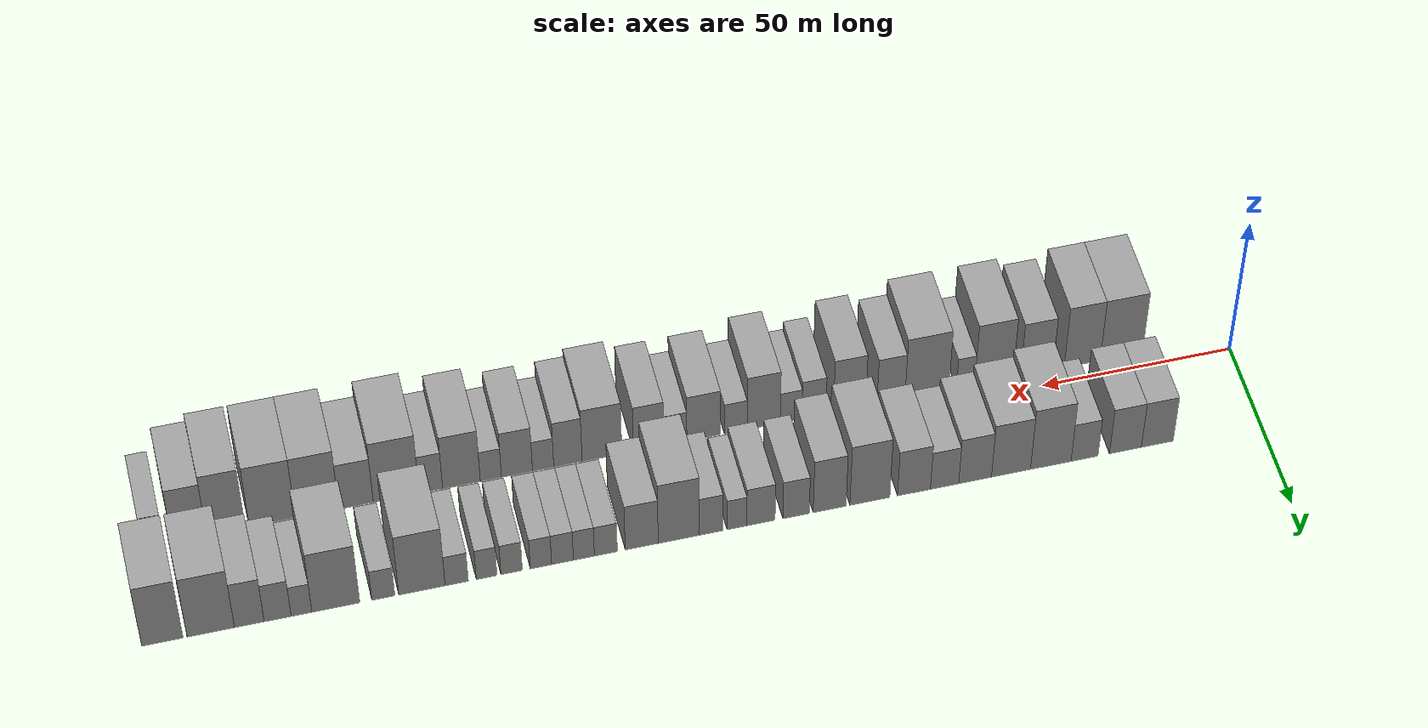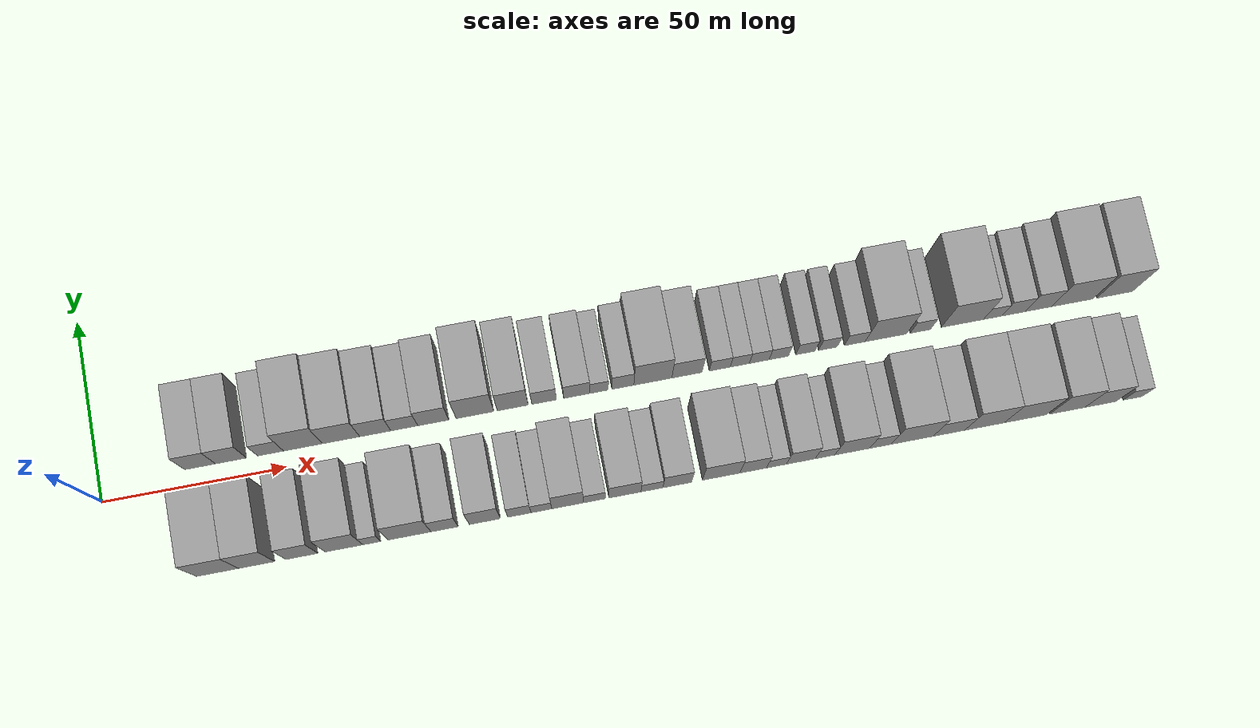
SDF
<sdf version="1.6">
 <world name="default">
  <scene>
   <sky><clouds><speed>12</speed></clouds></sky>
   <ambient>0.4 0.4 0.4 1</ambient>
   <background>0.7 0.7 0.7 1</background>
   <shadows>1</shadows>
  </scene>
  <gravity>0 0 -9.8066</gravity>
  <magnetic_field>6e-06 2.3e-05 -4.2e-05</magnetic_field>
  <physics default="0" name="default_physics" type="ode">
   <ode>
    <solver>
     <type>quick</type>
     <iters>10</iters>
     <sor>1.0</sor>
     <use_dynamic_moi_rescaling>0</use_dynamic_moi_rescaling>
    </solver>
    <constraints>
     <cfm>0</cfm>
     <erp>0.2</erp>
     <contact_max_correcting_vel>100</contact_max_correcting_vel>
     <contact_surface_layer>0.001</contact_surface_layer>
    </constraints>
   </ode>
   <max_step_size>0.004</max_step_size>
   <real_time_factor>1</real_time_factor>
   <real_time_update_rate>250</real_time_update_rate>
  </physics>
  <light name="sun" type="directional">
   <pose>0 0 10 0 0 0</pose>
   <diffuse>0.8 0.8 0.8 1</diffuse>
   <specular>0.2 0.2 0.2 1</specular>
   <attenuation>
    <range>1000</range>
    <constant>0.9</constant>
    <linear>0.01</linear>
    <quadratic>0.001</quadratic>
   </attenuation>
   <direction>-0.5 0.1 -0.9</direction>
  </light>
  <model name="building_1">
   <static>1</static>
   <pose>27.1876 14.5000 0 0.000000 0.000000 1.570796</pose>
   <link name="link">
    <pose>0 0 9.00 0 0 0</pose>
    <collision name="collision"><geometry><box><size>20.0000 8.3752 18.0000</size></box></geometry></collision>
    <visual name="visual">
     <cast_shadows>0</cast_shadows>
     <geometry><box><size>20.0000 8.3752 18.0000</size></box></geometry>
     <material>
      <script>
       <uri>model://grey_wall/materials/scripts</uri>
       <uri>model://grey_wall/materials/textures</uri>
       <name>vrc/grey_wall</name>
      </script>
     </material>
    </visual>
   </link>
  </model>
  <model name="building_2">
   <static>1</static>
   <pose>35.5792 14.5000 0 0.000000 0.000000 1.570796</pose>
   <link name="link">
    <pose>0 0 9.00 0 0 0</pose>
    <collision name="collision"><geometry><box><size>20.0000 8.4080 18.0000</size></box></geometry></collision>
    <visual name="visual">
     <cast_shadows>0</cast_shadows>
     <geometry><box><size>20.0000 8.4080 18.0000</size></box></geometry>
     <material>
      <script>
       <uri>model://grey_wall/materials/scripts</uri>
       <uri>model://grey_wall/materials/textures</uri>
       <name>vrc/grey_wall</name>
      </script>
     </material>
    </visual>
   </link>
  </model>
  <model name="building_3">
   <static>1</static>
   <pose>46.3219 14.5000 0 0.000000 0.000000 1.570796</pose>
   <link name="link">
    <pose>0 0 7.50 0 0 0</pose>
    <collision name="collision"><geometry><box><size>20.0000 7.0773 15.0000</size></box></geometry></collision>
    <visual name="visual">
     <cast_shadows>0</cast_shadows>
     <geometry><box><size>20.0000 7.0773 15.0000</size></box></geometry>
     <material>
      <script>
       <uri>model://grey_wall/materials/scripts</uri>
       <uri>model://grey_wall/materials/textures</uri>
       <name>vrc/grey_wall</name>
      </script>
     </material>
    </visual>
   </link>
  </model>
  <model name="building_4">
   <static>1</static>
   <pose>55.1676 14.5000 0 0.000000 0.000000 1.570796</pose>
   <link name="link">
    <pose>0 0 12.00 0 0 0</pose>
    <collision name="collision"><geometry><box><size>20.0000 10.6142 24.0000</size></box></geometry></collision>
    <visual name="visual">
     <cast_shadows>0</cast_shadows>
     <geometry><box><size>20.0000 10.6142 24.0000</size></box></geometry>
     <material>
      <script>
       <uri>model://grey_wall/materials/scripts</uri>
       <uri>model://grey_wall/materials/textures</uri>
       <name>vrc/grey_wall</name>
      </script>
     </material>
    </visual>
   </link>
  </model>
  <model name="building_5">
   <static>1</static>
   <pose>65.5635 14.5000 0 0.000000 0.000000 1.570796</pose>
   <link name="link">
    <pose>0 0 10.50 0 0 0</pose>
    <collision name="collision"><geometry><box><size>20.0000 10.1775 21.0000</size></box></geometry></collision>
    <visual name="visual">
     <cast_shadows>0</cast_shadows>
     <geometry><box><size>20.0000 10.1775 21.0000</size></box></geometry>
     <material>
      <script>
       <uri>model://grey_wall/materials/scripts</uri>
       <uri>model://grey_wall/materials/textures</uri>
       <name>vrc/grey_wall</name>
      </script>
     </material>
    </visual>
   </link>
  </model>
  <model name="building_6">
   <static>1</static>
   <pose>74.9178 14.5000 0 0.000000 0.000000 1.570796</pose>
   <link name="link">
    <pose>0 0 9.00 0 0 0</pose>
    <collision name="collision"><geometry><box><size>20.0000 8.5312 18.0000</size></box></geometry></collision>
    <visual name="visual">
     <cast_shadows>0</cast_shadows>
     <geometry><box><size>20.0000 8.5312 18.0000</size></box></geometry>
     <material>
      <script>
       <uri>model://grey_wall/materials/scripts</uri>
       <uri>model://grey_wall/materials/textures</uri>
       <name>vrc/grey_wall</name>
      </script>
     </material>
    </visual>
   </link>
  </model>
  <model name="building_7">
   <static>1</static>
   <pose>82.8562 14.5000 0 0.000000 0.000000 1.570796</pose>
   <link name="link">
    <pose>0 0 7.50 0 0 0</pose>
    <collision name="collision"><geometry><box><size>20.0000 7.3456 15.0000</size></box></geometry></collision>
    <visual name="visual">
     <cast_shadows>0</cast_shadows>
     <geometry><box><size>20.0000 7.3456 15.0000</size></box></geometry>
     <material>
      <script>
       <uri>model://grey_wall/materials/scripts</uri>
       <uri>model://grey_wall/materials/textures</uri>
       <name>vrc/grey_wall</name>
      </script>
     </material>
    </visual>
   </link>
  </model>
  <model name="building_8">
   <static>1</static>
   <pose>90.7901 14.5000 0 0.000000 0.000000 1.570796</pose>
   <link name="link">
    <pose>0 0 9.00 0 0 0</pose>
    <collision name="collision"><geometry><box><size>20.0000 8.5224 18.0000</size></box></geometry></collision>
    <visual name="visual">
     <cast_shadows>0</cast_shadows>
     <geometry><box><size>20.0000 8.5224 18.0000</size></box></geometry>
     <material>
      <script>
       <uri>model://grey_wall/materials/scripts</uri>
       <uri>model://grey_wall/materials/textures</uri>
       <name>vrc/grey_wall</name>
      </script>
     </material>
    </visual>
   </link>
  </model>
  <model name="building_9">
   <static>1</static>
   <pose>102.2046 14.5000 0 0.000000 0.000000 1.570796</pose>
   <link name="link">
    <pose>0 0 12.00 0 0 0</pose>
    <collision name="collision"><geometry><box><size>20.0000 10.3066 24.0000</size></box></geometry></collision>
    <visual name="visual">
     <cast_shadows>0</cast_shadows>
     <geometry><box><size>20.0000 10.3066 24.0000</size></box></geometry>
     <material>
      <script>
       <uri>model://grey_wall/materials/scripts</uri>
       <uri>model://grey_wall/materials/textures</uri>
       <name>vrc/grey_wall</name>
      </script>
     </material>
    </visual>
   </link>
  </model>
  <model name="building_10">
   <static>1</static>
   <pose>112.5897 14.5000 0 0.000000 0.000000 1.570796</pose>
   <link name="link">
    <pose>0 0 10.50 0 0 0</pose>
    <collision name="collision"><geometry><box><size>20.0000 8.4636 21.0000</size></box></geometry></collision>
    <visual name="visual">
     <cast_shadows>0</cast_shadows>
     <geometry><box><size>20.0000 8.4636 21.0000</size></box></geometry>
     <material>
      <script>
       <uri>model://grey_wall/materials/scripts</uri>
       <uri>model://grey_wall/materials/textures</uri>
       <name>vrc/grey_wall</name>
      </script>
     </material>
    </visual>
   </link>
  </model>
  <model name="building_11">
   <static>1</static>
   <pose>121.2099 14.5000 0 0.000000 0.000000 1.570796</pose>
   <link name="link">
    <pose>0 0 7.50 0 0 0</pose>
    <collision name="collision"><geometry><box><size>20.0000 6.7768 15.0000</size></box></geometry></collision>
    <visual name="visual">
     <cast_shadows>0</cast_shadows>
     <geometry><box><size>20.0000 6.7768 15.0000</size></box></geometry>
     <material>
      <script>
       <uri>model://grey_wall/materials/scripts</uri>
       <uri>model://grey_wall/materials/textures</uri>
       <name>vrc/grey_wall</name>
      </script>
     </material>
    </visual>
   </link>
  </model>
  <model name="building_12">
   <static>1</static>
   <pose>130.2151 14.5000 0 0.000000 0.000000 1.570796</pose>
   <link name="link">
    <pose>0 0 7.50 0 0 0</pose>
    <collision name="collision"><geometry><box><size>20.0000 7.2336 15.0000</size></box></geometry></collision>
    <visual name="visual">
     <cast_shadows>0</cast_shadows>
     <geometry><box><size>20.0000 7.2336 15.0000</size></box></geometry>
     <material>
      <script>
       <uri>model://grey_wall/materials/scripts</uri>
       <uri>model://grey_wall/materials/textures</uri>
       <name>vrc/grey_wall</name>
      </script>
     </material>
    </visual>
   </link>
  </model>
  <model name="building_13">
   <static>1</static>
   <pose>136.3570 14.5000 0 0.000000 0.000000 1.570796</pose>
   <link name="link">
    <pose>0 0 6.00 0 0 0</pose>
    <collision name="collision"><geometry><box><size>20.0000 5.0501 12.0000</size></box></geometry></collision>
    <visual name="visual">
     <cast_shadows>0</cast_shadows>
     <geometry><box><size>20.0000 5.0501 12.0000</size></box></geometry>
     <material>
      <script>
       <uri>model://grey_wall/materials/scripts</uri>
       <uri>model://grey_wall/materials/textures</uri>
       <name>vrc/grey_wall</name>
      </script>
     </material>
    </visual>
   </link>
  </model>
  <model name="building_14">
   <static>1</static>
   <pose>142.8985 14.5000 0 0.000000 0.000000 1.570796</pose>
   <link name="link">
    <pose>0 0 7.50 0 0 0</pose>
    <collision name="collision"><geometry><box><size>20.0000 6.0329 15.0000</size></box></geometry></collision>
    <visual name="visual">
     <cast_shadows>0</cast_shadows>
     <geometry><box><size>20.0000 6.0329 15.0000</size></box></geometry>
     <material>
      <script>
       <uri>model://grey_wall/materials/scripts</uri>
       <uri>model://grey_wall/materials/textures</uri>
       <name>vrc/grey_wall</name>
      </script>
     </material>
    </visual>
   </link>
  </model>
  <model name="building_15">
   <static>1</static>
   <pose>151.1614 14.5000 0 0.000000 0.000000 1.570796</pose>
   <link name="link">
    <pose>0 0 12.00 0 0 0</pose>
    <collision name="collision"><geometry><box><size>20.0000 10.4929 24.0000</size></box></geometry></collision>
    <visual name="visual">
     <cast_shadows>0</cast_shadows>
     <geometry><box><size>20.0000 10.4929 24.0000</size></box></geometry>
     <material>
      <script>
       <uri>model://grey_wall/materials/scripts</uri>
       <uri>model://grey_wall/materials/textures</uri>
       <name>vrc/grey_wall</name>
      </script>
     </material>
    </visual>
   </link>
  </model>
  <model name="building_16">
   <static>1</static>
   <pose>160.5998 14.5000 0 0.000000 0.000000 1.570796</pose>
   <link name="link">
    <pose>0 0 9.00 0 0 0</pose>
    <collision name="collision"><geometry><box><size>20.0000 8.3838 18.0000</size></box></geometry></collision>
    <visual name="visual">
     <cast_shadows>0</cast_shadows>
     <geometry><box><size>20.0000 8.3838 18.0000</size></box></geometry>
     <material>
      <script>
       <uri>model://grey_wall/materials/scripts</uri>
       <uri>model://grey_wall/materials/textures</uri>
       <name>vrc/grey_wall</name>
      </script>
     </material>
    </visual>
   </link>
  </model>
  <model name="building_17">
   <static>1</static>
   <pose>169.6943 14.5000 0 0.000000 0.000000 1.570796</pose>
   <link name="link">
    <pose>0 0 6.00 0 0 0</pose>
    <collision name="collision"><geometry><box><size>20.0000 5.8050 12.0000</size></box></geometry></collision>
    <visual name="visual">
     <cast_shadows>0</cast_shadows>
     <geometry><box><size>20.0000 5.8050 12.0000</size></box></geometry>
     <material>
      <script>
       <uri>model://grey_wall/materials/scripts</uri>
       <uri>model://grey_wall/materials/textures</uri>
       <name>vrc/grey_wall</name>
      </script>
     </material>
    </visual>
   </link>
  </model>
  <model name="building_18">
   <static>1</static>
   <pose>175.2472 14.5000 0 0.000000 0.000000 1.570796</pose>
   <link name="link">
    <pose>0 0 6.00 0 0 0</pose>
    <collision name="collision"><geometry><box><size>20.0000 5.3009 12.0000</size></box></geometry></collision>
    <visual name="visual">
     <cast_shadows>0</cast_shadows>
     <geometry><box><size>20.0000 5.3009 12.0000</size></box></geometry>
     <material>
      <script>
       <uri>model://grey_wall/materials/scripts</uri>
       <uri>model://grey_wall/materials/textures</uri>
       <name>vrc/grey_wall</name>
      </script>
     </material>
    </visual>
   </link>
  </model>
  <model name="building_19">
   <static>1</static>
   <pose>180.6435 14.5000 0 0.000000 0.000000 1.570796</pose>
   <link name="link">
    <pose>0 0 6.00 0 0 0</pose>
    <collision name="collision"><geometry><box><size>20.0000 5.4917 12.0000</size></box></geometry></collision>
    <visual name="visual">
     <cast_shadows>0</cast_shadows>
     <geometry><box><size>20.0000 5.4917 12.0000</size></box></geometry>
     <material>
      <script>
       <uri>model://grey_wall/materials/scripts</uri>
       <uri>model://grey_wall/materials/textures</uri>
       <name>vrc/grey_wall</name>
      </script>
     </material>
    </visual>
   </link>
  </model>
  <model name="building_20">
   <static>1</static>
   <pose>186.0893 14.5000 0 0.000000 0.000000 1.570796</pose>
   <link name="link">
    <pose>0 0 6.00 0 0 0</pose>
    <collision name="collision"><geometry><box><size>20.0000 5.4000 12.0000</size></box></geometry></collision>
    <visual name="visual">
     <cast_shadows>0</cast_shadows>
     <geometry><box><size>20.0000 5.4000 12.0000</size></box></geometry>
     <material>
      <script>
       <uri>model://grey_wall/materials/scripts</uri>
       <uri>model://grey_wall/materials/textures</uri>
       <name>vrc/grey_wall</name>
      </script>
     </material>
    </visual>
   </link>
  </model>
  <model name="building_21">
   <static>1</static>
   <pose>193.4776 14.5000 0 0.000000 0.000000 1.570796</pose>
   <link name="link">
    <pose>0 0 6.00 0 0 0</pose>
    <collision name="collision"><geometry><box><size>20.0000 5.3765 12.0000</size></box></geometry></collision>
    <visual name="visual">
     <cast_shadows>0</cast_shadows>
     <geometry><box><size>20.0000 5.3765 12.0000</size></box></geometry>
     <material>
      <script>
       <uri>model://grey_wall/materials/scripts</uri>
       <uri>model://grey_wall/materials/textures</uri>
       <name>vrc/grey_wall</name>
      </script>
     </material>
    </visual>
   </link>
  </model>
  <model name="building_22">
   <static>1</static>
   <pose>199.7601 14.5000 0 0.000000 0.000000 1.570796</pose>
   <link name="link">
    <pose>0 0 6.00 0 0 0</pose>
    <collision name="collision"><geometry><box><size>20.0000 5.1885 12.0000</size></box></geometry></collision>
    <visual name="visual">
     <cast_shadows>0</cast_shadows>
     <geometry><box><size>20.0000 5.1885 12.0000</size></box></geometry>
     <material>
      <script>
       <uri>model://grey_wall/materials/scripts</uri>
       <uri>model://grey_wall/materials/textures</uri>
       <name>vrc/grey_wall</name>
      </script>
     </material>
    </visual>
   </link>
  </model>
  <model name="building_23">
   <static>1</static>
   <pose>207.2518 14.5000 0 0.000000 0.000000 1.570796</pose>
   <link name="link">
    <pose>0 0 6.00 0 0 0</pose>
    <collision name="collision"><geometry><box><size>20.0000 5.7950 12.0000</size></box></geometry></collision>
    <visual name="visual">
     <cast_shadows>0</cast_shadows>
     <geometry><box><size>20.0000 5.7950 12.0000</size></box></geometry>
     <material>
      <script>
       <uri>model://grey_wall/materials/scripts</uri>
       <uri>model://grey_wall/materials/textures</uri>
       <name>vrc/grey_wall</name>
      </script>
     </material>
    </visual>
   </link>
  </model>
  <model name="building_24">
   <static>1</static>
   <pose>215.9389 14.5000 0 0.000000 0.000000 1.570796</pose>
   <link name="link">
    <pose>0 0 12.00 0 0 0</pose>
    <collision name="collision"><geometry><box><size>20.0000 11.5791 24.0000</size></box></geometry></collision>
    <visual name="visual">
     <cast_shadows>0</cast_shadows>
     <geometry><box><size>20.0000 11.5791 24.0000</size></box></geometry>
     <material>
      <script>
       <uri>model://grey_wall/materials/scripts</uri>
       <uri>model://grey_wall/materials/textures</uri>
       <name>vrc/grey_wall</name>
      </script>
     </material>
    </visual>
   </link>
  </model>
  <model name="building_25">
   <static>1</static>
   <pose>225.5829 14.5000 0 0.000000 0.000000 1.570796</pose>
   <link name="link">
    <pose>0 0 6.00 0 0 0</pose>
    <collision name="collision"><geometry><box><size>20.0000 5.7089 12.0000</size></box></geometry></collision>
    <visual name="visual">
     <cast_shadows>0</cast_shadows>
     <geometry><box><size>20.0000 5.7089 12.0000</size></box></geometry>
     <material>
      <script>
       <uri>model://grey_wall/materials/scripts</uri>
       <uri>model://grey_wall/materials/textures</uri>
       <name>vrc/grey_wall</name>
      </script>
     </material>
    </visual>
   </link>
  </model>
  <model name="building_26">
   <static>1</static>
   <pose>237.3763 14.5000 0 0.000000 0.000000 1.570796</pose>
   <link name="link">
    <pose>0 0 12.00 0 0 0</pose>
    <collision name="collision"><geometry><box><size>20.0000 11.8779 24.0000</size></box></geometry></collision>
    <visual name="visual">
     <cast_shadows>0</cast_shadows>
     <geometry><box><size>20.0000 11.8779 24.0000</size></box></geometry>
     <material>
      <script>
       <uri>model://grey_wall/materials/scripts</uri>
       <uri>model://grey_wall/materials/textures</uri>
       <name>vrc/grey_wall</name>
      </script>
     </material>
    </visual>
   </link>
  </model>
  <model name="building_27">
   <static>1</static>
   <pose>245.8918 14.5000 0 0.000000 0.000000 1.570796</pose>
   <link name="link">
    <pose>0 0 6.00 0 0 0</pose>
    <collision name="collision"><geometry><box><size>20.0000 5.1532 12.0000</size></box></geometry></collision>
    <visual name="visual">
     <cast_shadows>0</cast_shadows>
     <geometry><box><size>20.0000 5.1532 12.0000</size></box></geometry>
     <material>
      <script>
       <uri>model://grey_wall/materials/scripts</uri>
       <uri>model://grey_wall/materials/textures</uri>
       <name>vrc/grey_wall</name>
      </script>
     </material>
    </visual>
   </link>
  </model>
  <model name="building_28">
   <static>1</static>
   <pose>251.8001 14.5000 0 0.000000 0.000000 1.570796</pose>
   <link name="link">
    <pose>0 0 7.50 0 0 0</pose>
    <collision name="collision"><geometry><box><size>20.0000 6.6634 15.0000</size></box></geometry></collision>
    <visual name="visual">
     <cast_shadows>0</cast_shadows>
     <geometry><box><size>20.0000 6.6634 15.0000</size></box></geometry>
     <material>
      <script>
       <uri>model://grey_wall/materials/scripts</uri>
       <uri>model://grey_wall/materials/textures</uri>
       <name>vrc/grey_wall</name>
      </script>
     </material>
    </visual>
   </link>
  </model>
  <model name="building_29">
   <static>1</static>
   <pose>258.7989 14.5000 0 0.000000 0.000000 1.570796</pose>
   <link name="link">
    <pose>0 0 9.00 0 0 0</pose>
    <collision name="collision"><geometry><box><size>20.0000 7.3343 18.0000</size></box></geometry></collision>
    <visual name="visual">
     <cast_shadows>0</cast_shadows>
     <geometry><box><size>20.0000 7.3343 18.0000</size></box></geometry>
     <material>
      <script>
       <uri>model://grey_wall/materials/scripts</uri>
       <uri>model://grey_wall/materials/textures</uri>
       <name>vrc/grey_wall</name>
      </script>
     </material>
    </visual>
   </link>
  </model>
  <model name="building_30">
   <static>1</static>
   <pose>268.2952 14.5000 0 0.000000 0.000000 1.570796</pose>
   <link name="link">
    <pose>0 0 12.00 0 0 0</pose>
    <collision name="collision"><geometry><box><size>20.0000 11.6583 24.0000</size></box></geometry></collision>
    <visual name="visual">
     <cast_shadows>0</cast_shadows>
     <geometry><box><size>20.0000 11.6583 24.0000</size></box></geometry>
     <material>
      <script>
       <uri>model://grey_wall/materials/scripts</uri>
       <uri>model://grey_wall/materials/textures</uri>
       <name>vrc/grey_wall</name>
      </script>
     </material>
    </visual>
   </link>
  </model>
  <model name="building_31">
   <static>1</static>
   <pose>280.1811 14.5000 0 0.000000 0.000000 1.570796</pose>
   <link name="link">
    <pose>0 0 12.00 0 0 0</pose>
    <collision name="collision"><geometry><box><size>20.0000 10.1135 24.0000</size></box></geometry></collision>
    <visual name="visual">
     <cast_shadows>0</cast_shadows>
     <geometry><box><size>20.0000 10.1135 24.0000</size></box></geometry>
     <material>
      <script>
       <uri>model://grey_wall/materials/scripts</uri>
       <uri>model://grey_wall/materials/textures</uri>
       <name>vrc/grey_wall</name>
      </script>
     </material>
    </visual>
   </link>
  </model>
  <model name="building_32">
   <static>1</static>
   <pose>27.6663 -14.5000 0 0.000000 0.000000 1.570796</pose>
   <link name="link">
    <pose>0 0 12.00 0 0 0</pose>
    <collision name="collision"><geometry><box><size>20.0000 11.3326 24.0000</size></box></geometry></collision>
    <visual name="visual">
     <cast_shadows>0</cast_shadows>
     <geometry><box><size>20.0000 11.3326 24.0000</size></box></geometry>
     <material>
      <script>
       <uri>model://grey_wall/materials/scripts</uri>
       <uri>model://grey_wall/materials/textures</uri>
       <name>vrc/grey_wall</name>
      </script>
     </material>
    </visual>
   </link>
  </model>
  <model name="building_33">
   <static>1</static>
   <pose>38.1491 -14.5000 0 0.000000 0.000000 1.570796</pose>
   <link name="link">
    <pose>0 0 12.00 0 0 0</pose>
    <collision name="collision"><geometry><box><size>20.0000 9.6331 24.0000</size></box></geometry></collision>
    <visual name="visual">
     <cast_shadows>0</cast_shadows>
     <geometry><box><size>20.0000 9.6331 24.0000</size></box></geometry>
     <material>
      <script>
       <uri>model://grey_wall/materials/scripts</uri>
       <uri>model://grey_wall/materials/textures</uri>
       <name>vrc/grey_wall</name>
      </script>
     </material>
    </visual>
   </link>
  </model>
  <model name="building_34">
   <static>1</static>
   <pose>50.2664 -14.5000 0 0.000000 0.000000 1.570796</pose>
   <link name="link">
    <pose>0 0 10.50 0 0 0</pose>
    <collision name="collision"><geometry><box><size>20.0000 8.6014 21.0000</size></box></geometry></collision>
    <visual name="visual">
     <cast_shadows>0</cast_shadows>
     <geometry><box><size>20.0000 8.6014 21.0000</size></box></geometry>
     <material>
      <script>
       <uri>model://grey_wall/materials/scripts</uri>
       <uri>model://grey_wall/materials/textures</uri>
       <name>vrc/grey_wall</name>
      </script>
     </material>
    </visual>
   </link>
  </model>
  <model name="building_35">
   <static>1</static>
   <pose>61.6556 -14.5000 0 0.000000 0.000000 1.570796</pose>
   <link name="link">
    <pose>0 0 12.00 0 0 0</pose>
    <collision name="collision"><geometry><box><size>20.0000 10.1771 24.0000</size></box></geometry></collision>
    <visual name="visual">
     <cast_shadows>0</cast_shadows>
     <geometry><box><size>20.0000 10.1771 24.0000</size></box></geometry>
     <material>
      <script>
       <uri>model://grey_wall/materials/scripts</uri>
       <uri>model://grey_wall/materials/textures</uri>
       <name>vrc/grey_wall</name>
      </script>
     </material>
    </visual>
   </link>
  </model>
  <model name="building_36">
   <static>1</static>
   <pose>69.1607 -14.5000 0 0.000000 0.000000 1.570796</pose>
   <link name="link">
    <pose>0 0 6.00 0 0 0</pose>
    <collision name="collision"><geometry><box><size>20.0000 4.8330 12.0000</size></box></geometry></collision>
    <visual name="visual">
     <cast_shadows>0</cast_shadows>
     <geometry><box><size>20.0000 4.8330 12.0000</size></box></geometry>
     <material>
      <script>
       <uri>model://grey_wall/materials/scripts</uri>
       <uri>model://grey_wall/materials/textures</uri>
       <name>vrc/grey_wall</name>
      </script>
     </material>
    </visual>
   </link>
  </model>
  <model name="building_37">
   <static>1</static>
   <pose>79.3704 -14.5000 0 0.000000 0.000000 1.570796</pose>
   <link name="link">
    <pose>0 0 12.00 0 0 0</pose>
    <collision name="collision"><geometry><box><size>20.0000 11.5865 24.0000</size></box></geometry></collision>
    <visual name="visual">
     <cast_shadows>0</cast_shadows>
     <geometry><box><size>20.0000 11.5865 24.0000</size></box></geometry>
     <material>
      <script>
       <uri>model://grey_wall/materials/scripts</uri>
       <uri>model://grey_wall/materials/textures</uri>
       <name>vrc/grey_wall</name>
      </script>
     </material>
    </visual>
   </link>
  </model>
  <model name="building_38">
   <static>1</static>
   <pose>88.8504 -14.5000 0 0.000000 0.000000 1.570796</pose>
   <link name="link">
    <pose>0 0 9.00 0 0 0</pose>
    <collision name="collision"><geometry><box><size>20.0000 7.3736 18.0000</size></box></geometry></collision>
    <visual name="visual">
     <cast_shadows>0</cast_shadows>
     <geometry><box><size>20.0000 7.3736 18.0000</size></box></geometry>
     <material>
      <script>
       <uri>model://grey_wall/materials/scripts</uri>
       <uri>model://grey_wall/materials/textures</uri>
       <name>vrc/grey_wall</name>
      </script>
     </material>
    </visual>
   </link>
  </model>
  <model name="building_39">
   <static>1</static>
   <pose>99.7573 -14.5000 0 0.000000 0.000000 1.570796</pose>
   <link name="link">
    <pose>0 0 10.50 0 0 0</pose>
    <collision name="collision"><geometry><box><size>20.0000 8.4401 21.0000</size></box></geometry></collision>
    <visual name="visual">
     <cast_shadows>0</cast_shadows>
     <geometry><box><size>20.0000 8.4401 21.0000</size></box></geometry>
     <material>
      <script>
       <uri>model://grey_wall/materials/scripts</uri>
       <uri>model://grey_wall/materials/textures</uri>
       <name>vrc/grey_wall</name>
      </script>
     </material>
    </visual>
   </link>
  </model>
  <model name="building_40">
   <static>1</static>
   <pose>109.1263 -14.5000 0 0.000000 0.000000 1.570796</pose>
   <link name="link">
    <pose>0 0 7.50 0 0 0</pose>
    <collision name="collision"><geometry><box><size>20.0000 6.2978 15.0000</size></box></geometry></collision>
    <visual name="visual">
     <cast_shadows>0</cast_shadows>
     <geometry><box><size>20.0000 6.2978 15.0000</size></box></geometry>
     <material>
      <script>
       <uri>model://grey_wall/materials/scripts</uri>
       <uri>model://grey_wall/materials/textures</uri>
       <name>vrc/grey_wall</name>
      </script>
     </material>
    </visual>
   </link>
  </model>
  <model name="building_41">
   <static>1</static>
   <pose>115.0996 -14.5000 0 0.000000 0.000000 1.570796</pose>
   <link name="link">
    <pose>0 0 6.00 0 0 0</pose>
    <collision name="collision"><geometry><box><size>20.0000 5.6488 12.0000</size></box></geometry></collision>
    <visual name="visual">
     <cast_shadows>0</cast_shadows>
     <geometry><box><size>20.0000 5.6488 12.0000</size></box></geometry>
     <material>
      <script>
       <uri>model://grey_wall/materials/scripts</uri>
       <uri>model://grey_wall/materials/textures</uri>
       <name>vrc/grey_wall</name>
      </script>
     </material>
    </visual>
   </link>
  </model>
  <model name="building_42">
   <static>1</static>
   <pose>122.2380 -14.5000 0 0.000000 0.000000 1.570796</pose>
   <link name="link">
    <pose>0 0 10.50 0 0 0</pose>
    <collision name="collision"><geometry><box><size>20.0000 8.6280 21.0000</size></box></geometry></collision>
    <visual name="visual">
     <cast_shadows>0</cast_shadows>
     <geometry><box><size>20.0000 8.6280 21.0000</size></box></geometry>
     <material>
      <script>
       <uri>model://grey_wall/materials/scripts</uri>
       <uri>model://grey_wall/materials/textures</uri>
       <name>vrc/grey_wall</name>
      </script>
     </material>
    </visual>
   </link>
  </model>
  <model name="building_43">
   <static>1</static>
   <pose>129.5038 -14.5000 0 0.000000 0.000000 1.570796</pose>
   <link name="link">
    <pose>0 0 6.00 0 0 0</pose>
    <collision name="collision"><geometry><box><size>20.0000 5.9036 12.0000</size></box></geometry></collision>
    <visual name="visual">
     <cast_shadows>0</cast_shadows>
     <geometry><box><size>20.0000 5.9036 12.0000</size></box></geometry>
     <material>
      <script>
       <uri>model://grey_wall/materials/scripts</uri>
       <uri>model://grey_wall/materials/textures</uri>
       <name>vrc/grey_wall</name>
      </script>
     </material>
    </visual>
   </link>
  </model>
  <model name="building_44">
   <static>1</static>
   <pose>137.8251 -14.5000 0 0.000000 0.000000 1.570796</pose>
   <link name="link">
    <pose>0 0 9.00 0 0 0</pose>
    <collision name="collision"><geometry><box><size>20.0000 8.7390 18.0000</size></box></geometry></collision>
    <visual name="visual">
     <cast_shadows>0</cast_shadows>
     <geometry><box><size>20.0000 8.7390 18.0000</size></box></geometry>
     <material>
      <script>
       <uri>model://grey_wall/materials/scripts</uri>
       <uri>model://grey_wall/materials/textures</uri>
       <name>vrc/grey_wall</name>
      </script>
     </material>
    </visual>
   </link>
  </model>
  <model name="building_45">
   <static>1</static>
   <pose>145.1909 -14.5000 0 0.000000 0.000000 1.570796</pose>
   <link name="link">
    <pose>0 0 6.00 0 0 0</pose>
    <collision name="collision"><geometry><box><size>20.0000 5.9924 12.0000</size></box></geometry></collision>
    <visual name="visual">
     <cast_shadows>0</cast_shadows>
     <geometry><box><size>20.0000 5.9924 12.0000</size></box></geometry>
     <material>
      <script>
       <uri>model://grey_wall/materials/scripts</uri>
       <uri>model://grey_wall/materials/textures</uri>
       <name>vrc/grey_wall</name>
      </script>
     </material>
    </visual>
   </link>
  </model>
  <model name="building_46">
   <static>1</static>
   <pose>152.0969 -14.5000 0 0.000000 0.000000 1.570796</pose>
   <link name="link">
    <pose>0 0 9.00 0 0 0</pose>
    <collision name="collision"><geometry><box><size>20.0000 7.8197 18.0000</size></box></geometry></collision>
    <visual name="visual">
     <cast_shadows>0</cast_shadows>
     <geometry><box><size>20.0000 7.8197 18.0000</size></box></geometry>
     <material>
      <script>
       <uri>model://grey_wall/materials/scripts</uri>
       <uri>model://grey_wall/materials/textures</uri>
       <name>vrc/grey_wall</name>
      </script>
     </material>
    </visual>
   </link>
  </model>
  <model name="building_47">
   <static>1</static>
   <pose>164.1275 -14.5000 0 0.000000 0.000000 1.570796</pose>
   <link name="link">
    <pose>0 0 10.50 0 0 0</pose>
    <collision name="collision"><geometry><box><size>20.0000 10.2415 21.0000</size></box></geometry></collision>
    <visual name="visual">
     <cast_shadows>0</cast_shadows>
     <geometry><box><size>20.0000 10.2415 21.0000</size></box></geometry>
     <material>
      <script>
       <uri>model://grey_wall/materials/scripts</uri>
       <uri>model://grey_wall/materials/textures</uri>
       <name>vrc/grey_wall</name>
      </script>
     </material>
    </visual>
   </link>
  </model>
  <model name="building_48">
   <static>1</static>
   <pose>172.8965 -14.5000 0 0.000000 0.000000 1.570796</pose>
   <link name="link">
    <pose>0 0 9.00 0 0 0</pose>
    <collision name="collision"><geometry><box><size>20.0000 7.2965 18.0000</size></box></geometry></collision>
    <visual name="visual">
     <cast_shadows>0</cast_shadows>
     <geometry><box><size>20.0000 7.2965 18.0000</size></box></geometry>
     <material>
      <script>
       <uri>model://grey_wall/materials/scripts</uri>
       <uri>model://grey_wall/materials/textures</uri>
       <name>vrc/grey_wall</name>
      </script>
     </material>
    </visual>
   </link>
  </model>
  <model name="building_49">
   <static>1</static>
   <pose>179.2691 -14.5000 0 0.000000 0.000000 1.570796</pose>
   <link name="link">
    <pose>0 0 6.00 0 0 0</pose>
    <collision name="collision"><geometry><box><size>20.0000 5.4486 12.0000</size></box></geometry></collision>
    <visual name="visual">
     <cast_shadows>0</cast_shadows>
     <geometry><box><size>20.0000 5.4486 12.0000</size></box></geometry>
     <material>
      <script>
       <uri>model://grey_wall/materials/scripts</uri>
       <uri>model://grey_wall/materials/textures</uri>
       <name>vrc/grey_wall</name>
      </script>
     </material>
    </visual>
   </link>
  </model>
  <model name="building_50">
   <static>1</static>
   <pose>185.9761 -14.5000 0 0.000000 0.000000 1.570796</pose>
   <link name="link">
    <pose>0 0 9.00 0 0 0</pose>
    <collision name="collision"><geometry><box><size>20.0000 7.9655 18.0000</size></box></geometry></collision>
    <visual name="visual">
     <cast_shadows>0</cast_shadows>
     <geometry><box><size>20.0000 7.9655 18.0000</size></box></geometry>
     <material>
      <script>
       <uri>model://grey_wall/materials/scripts</uri>
       <uri>model://grey_wall/materials/textures</uri>
       <name>vrc/grey_wall</name>
      </script>
     </material>
    </visual>
   </link>
  </model>
  <model name="building_51">
   <static>1</static>
   <pose>192.6598 -14.5000 0 0.000000 0.000000 1.570796</pose>
   <link name="link">
    <pose>0 0 6.00 0 0 0</pose>
    <collision name="collision"><geometry><box><size>20.0000 5.4017 12.0000</size></box></geometry></collision>
    <visual name="visual">
     <cast_shadows>0</cast_shadows>
     <geometry><box><size>20.0000 5.4017 12.0000</size></box></geometry>
     <material>
      <script>
       <uri>model://grey_wall/materials/scripts</uri>
       <uri>model://grey_wall/materials/textures</uri>
       <name>vrc/grey_wall</name>
      </script>
     </material>
    </visual>
   </link>
  </model>
  <model name="building_52">
   <static>1</static>
   <pose>200.1609 -14.5000 0 0.000000 0.000000 1.570796</pose>
   <link name="link">
    <pose>0 0 10.50 0 0 0</pose>
    <collision name="collision"><geometry><box><size>20.0000 9.6006 21.0000</size></box></geometry></collision>
    <visual name="visual">
     <cast_shadows>0</cast_shadows>
     <geometry><box><size>20.0000 9.6006 21.0000</size></box></geometry>
     <material>
      <script>
       <uri>model://grey_wall/materials/scripts</uri>
       <uri>model://grey_wall/materials/textures</uri>
       <name>vrc/grey_wall</name>
      </script>
     </material>
    </visual>
   </link>
  </model>
  <model name="building_53">
   <static>1</static>
   <pose>207.9636 -14.5000 0 0.000000 0.000000 1.570796</pose>
   <link name="link">
    <pose>0 0 7.50 0 0 0</pose>
    <collision name="collision"><geometry><box><size>20.0000 6.0047 15.0000</size></box></geometry></collision>
    <visual name="visual">
     <cast_shadows>0</cast_shadows>
     <geometry><box><size>20.0000 6.0047 15.0000</size></box></geometry>
     <material>
      <script>
       <uri>model://grey_wall/materials/scripts</uri>
       <uri>model://grey_wall/materials/textures</uri>
       <name>vrc/grey_wall</name>
      </script>
     </material>
    </visual>
   </link>
  </model>
  <model name="building_54">
   <static>1</static>
   <pose>216.7717 -14.5000 0 0.000000 0.000000 1.570796</pose>
   <link name="link">
    <pose>0 0 12.00 0 0 0</pose>
    <collision name="collision"><geometry><box><size>20.0000 11.6116 24.0000</size></box></geometry></collision>
    <visual name="visual">
     <cast_shadows>0</cast_shadows>
     <geometry><box><size>20.0000 11.6116 24.0000</size></box></geometry>
     <material>
      <script>
       <uri>model://grey_wall/materials/scripts</uri>
       <uri>model://grey_wall/materials/textures</uri>
       <name>vrc/grey_wall</name>
      </script>
     </material>
    </visual>
   </link>
  </model>
  <model name="building_55">
   <static>1</static>
   <pose>226.9298 -14.5000 0 0.000000 0.000000 1.570796</pose>
   <link name="link">
    <pose>0 0 9.00 0 0 0</pose>
    <collision name="collision"><geometry><box><size>20.0000 8.7046 18.0000</size></box></geometry></collision>
    <visual name="visual">
     <cast_shadows>0</cast_shadows>
     <geometry><box><size>20.0000 8.7046 18.0000</size></box></geometry>
     <material>
      <script>
       <uri>model://grey_wall/materials/scripts</uri>
       <uri>model://grey_wall/materials/textures</uri>
       <name>vrc/grey_wall</name>
      </script>
     </material>
    </visual>
   </link>
  </model>
  <model name="building_56">
   <static>1</static>
   <pose>236.7821 -14.5000 0 0.000000 0.000000 1.570796</pose>
   <link name="link">
    <pose>0 0 12.00 0 0 0</pose>
    <collision name="collision"><geometry><box><size>20.0000 10.9999 24.0000</size></box></geometry></collision>
    <visual name="visual">
     <cast_shadows>0</cast_shadows>
     <geometry><box><size>20.0000 10.9999 24.0000</size></box></geometry>
     <material>
      <script>
       <uri>model://grey_wall/materials/scripts</uri>
       <uri>model://grey_wall/materials/textures</uri>
       <name>vrc/grey_wall</name>
      </script>
     </material>
    </visual>
   </link>
  </model>
  <model name="building_57">
   <static>1</static>
   <pose>248.0839 -14.5000 0 0.000000 0.000000 1.570796</pose>
   <link name="link">
    <pose>0 0 12.00 0 0 0</pose>
    <collision name="collision"><geometry><box><size>20.0000 11.6037 24.0000</size></box></geometry></collision>
    <visual name="visual">
     <cast_shadows>0</cast_shadows>
     <geometry><box><size>20.0000 11.6037 24.0000</size></box></geometry>
     <material>
      <script>
       <uri>model://grey_wall/materials/scripts</uri>
       <uri>model://grey_wall/materials/textures</uri>
       <name>vrc/grey_wall</name>
      </script>
     </material>
    </visual>
   </link>
  </model>
  <model name="building_58">
   <static>1</static>
   <pose>259.7429 -14.5000 0 0.000000 0.000000 1.570796</pose>
   <link name="link">
    <pose>0 0 12.00 0 0 0</pose>
    <collision name="collision"><geometry><box><size>20.0000 9.7143 24.0000</size></box></geometry></collision>
    <visual name="visual">
     <cast_shadows>0</cast_shadows>
     <geometry><box><size>20.0000 9.7143 24.0000</size></box></geometry>
     <material>
      <script>
       <uri>model://grey_wall/materials/scripts</uri>
       <uri>model://grey_wall/materials/textures</uri>
       <name>vrc/grey_wall</name>
      </script>
     </material>
    </visual>
   </link>
  </model>
  <model name="building_59">
   <static>1</static>
   <pose>268.9270 -14.5000 0 0.000000 0.000000 1.570796</pose>
   <link name="link">
    <pose>0 0 10.50 0 0 0</pose>
    <collision name="collision"><geometry><box><size>20.0000 8.6540 21.0000</size></box></geometry></collision>
    <visual name="visual">
     <cast_shadows>0</cast_shadows>
     <geometry><box><size>20.0000 8.6540 21.0000</size></box></geometry>
     <material>
      <script>
       <uri>model://grey_wall/materials/scripts</uri>
       <uri>model://grey_wall/materials/textures</uri>
       <name>vrc/grey_wall</name>
      </script>
     </material>
    </visual>
   </link>
  </model>
  <model name="building_60">
   <static>1</static>
   <pose>277.9163 -14.5000 0 0.000000 0.000000 1.570796</pose>
   <link name="link">
    <pose>0 0 6.00 0 0 0</pose>
    <collision name="collision"><geometry><box><size>20.0000 5.3246 12.0000</size></box></geometry></collision>
    <visual name="visual">
     <cast_shadows>0</cast_shadows>
     <geometry><box><size>20.0000 5.3246 12.0000</size></box></geometry>
     <material>
      <script>
       <uri>model://grey_wall/materials/scripts</uri>
       <uri>model://grey_wall/materials/textures</uri>
       <name>vrc/grey_wall</name>
      </script>
     </material>
    </visual>
   </link>
  </model>
 </world>
</sdf>
